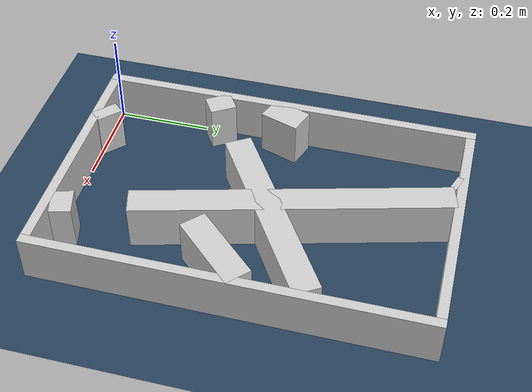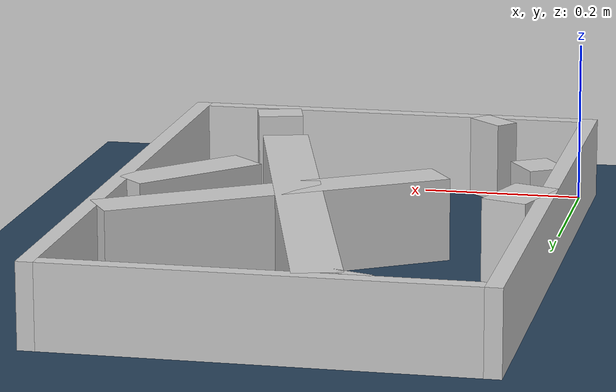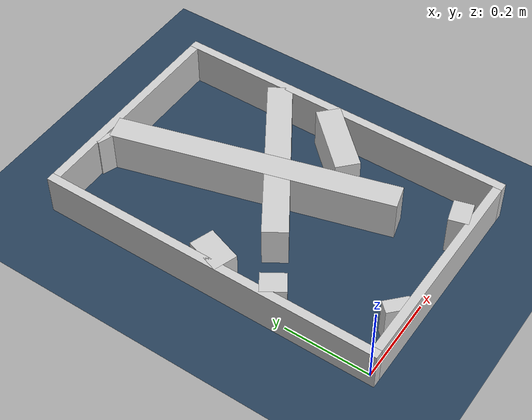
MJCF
<?xml version="1.0" ?>
<mujoco model="generated_real_template">
  <compiler angle="degree"/>
  <option timestep="0.002" integrator="implicitfast" iterations="100" cone="elliptic"/>
  <default>
    <geom density="1"/>
  </default>
  <asset>
    <texture builtin="gradient" height="3072" rgb1="0.3 0.5 0.7" rgb2="0 0 0" type="skybox" width="512"/>
    <texture builtin="checker" height="300" mark="edge" markrgb="0.8 0.8 0.8" name="groundplane" rgb1="0.2 0.3 0.4" rgb2="0.1 0.2 0.3" type="2d" width="300"/>
    <material name="groundplane" reflectance="0.2" texrepeat="5 5" texture="groundplane" texuniform="true"/>
  </asset>
  <worldbody>
    <light dir="0 0 -1" directional="true" pos="0 0 1.5"/>
    <geom name="floor" type="plane" condim="4" friction="0.5 0.005 0.001" material="groundplane" size="0 0 0.05"/>
    <body name="walls">
      <geom name="wall_boundary_left" type="box" condim="4" friction="1.0 0.005 0.0001" rgba="0.8 0.8 0.8 1" pos="-0.010000 0.387500 0.050000" euler="0 0 0.000000" size="0.010000 0.407500 0.050000"/>
      <geom name="wall_boundary_right" type="box" condim="4" friction="1.0 0.005 0.0001" rgba="0.8 0.8 0.8 1" pos="0.500000 0.387500 0.050000" euler="0 0 0.000000" size="0.010000 0.407500 0.050000"/>
      <geom name="wall_boundary_bottom" type="box" condim="4" friction="1.0 0.005 0.0001" rgba="0.8 0.8 0.8 1" pos="0.245000 -0.010000 0.050000" euler="0 0 0.000000" size="0.245000 0.010000 0.050000"/>
      <geom name="wall_boundary_top" type="box" condim="4" friction="1.0 0.005 0.0001" rgba="0.8 0.8 0.8 1" pos="0.245000 0.785000 0.050000" euler="0 0 0.000000" size="0.245000 0.010000 0.050000"/>
      <geom name="wall_inner_1_1" type="box" condim="4" friction="1.0 0.005 0.0001" rgba="0.8 0.8 0.8 1" pos="0.020954 0.388994 0.050000" euler="0 0 71.018263" size="0.043050 0.028500 0.050000"/>
      <geom name="wall_inner_1_2" type="box" condim="4" friction="1.0 0.005 0.0001" rgba="0.8 0.8 0.8 1" pos="0.151572 0.768729 0.050000" euler="0 0 71.018263" size="0.006631 0.028500 0.050000"/>
      <geom name="wall_inner_2_1" type="box" condim="4" friction="1.0 0.005 0.0001" rgba="0.8 0.8 0.8 1" pos="0.429859 0.349161 0.050000" euler="0 0 -133.374110" size="0.086527 0.028500 0.050000"/>
      <geom name="wall_inner_2_2" type="box" condim="4" friction="1.0 0.005 0.0001" rgba="0.8 0.8 0.8 1" pos="0.110459 0.011099 0.050000" euler="0 0 -133.374110" size="0.015269 0.028500 0.050000"/>
      <geom name="wall_inner_3_1" type="box" condim="4" friction="1.0 0.005 0.0001" rgba="0.8 0.8 0.8 1" pos="0.020123 0.242331 0.050000" euler="0 0 32.514059" size="0.023864 0.028500 0.050000"/>
      <geom name="wall_inner_3_2" type="box" condim="4" friction="1.0 0.005 0.0001" rgba="0.8 0.8 0.8 1" pos="0.309140 0.426554 0.050000" euler="0 0 32.514059" size="0.214477 0.028500 0.050000"/>
      <geom name="wall_inner_4_1" type="box" condim="4" friction="1.0 0.005 0.0001" rgba="0.8 0.8 0.8 1" pos="0.268548 0.460994 0.050000" euler="0 0 -74.623637" size="0.325663 0.028500 0.050000"/>
      <geom name="wall_inner_4_2" type="box" condim="4" friction="1.0 0.005 0.0001" rgba="0.8 0.8 0.8 1" pos="0.389404 0.021521 0.050000" euler="0 0 -74.623637" size="0.022320 0.028500 0.050000"/>
    </body>
  </worldbody>
</mujoco>
